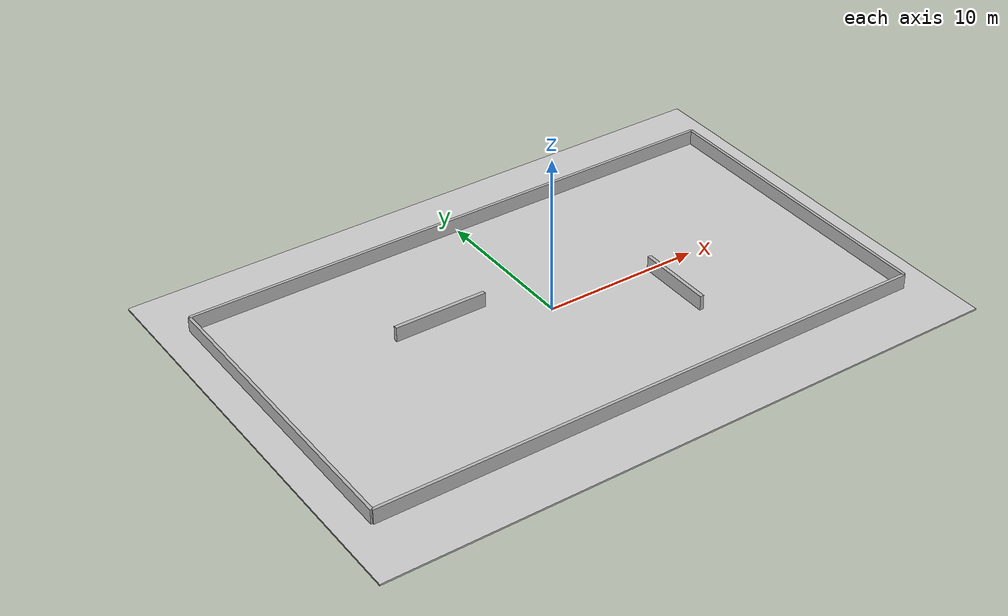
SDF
<?xml version='1.0'?>
<sdf version='1.9'>
  <world name='roboworks_world'>
    <physics name='default_physics' type='ode'>
      <max_step_size>0.001</max_step_size>
      <real_time_factor>1.0</real_time_factor>
      <real_time_update_rate>1000</real_time_update_rate>
    </physics>

    <plugin filename='gz-sim-physics-system' name='gz::sim::systems::Physics'/>
    <plugin filename='gz-sim-user-commands-system' name='gz::sim::systems::UserCommands'/>
    <plugin filename='gz-sim-sensors-system' name='gz::sim::systems::Sensors'/>
    <plugin filename='gz-sim-imu-system' name='gz::sim::systems::Imu'/>
    <plugin filename='gz-sim-scene-broadcaster-system' name='gz::sim::systems::SceneBroadcaster'/>

    <light name='sun' type='directional'>
      <pose>0 0 12 0 0 0</pose>
      <cast_shadows>true</cast_shadows>
      <diffuse>0.9 0.9 0.9 1</diffuse>
      <specular>0.2 0.2 0.2 1</specular>
      <direction>-0.5 0.1 -1</direction>
    </light>

    <model name='ground_plane'>
      <static>true</static>
      <link name='ground_link'>
        <collision name='ground_collision'>
          <geometry><box><size>40 28 0.1</size></box></geometry>
        </collision>
        <visual name='ground_visual'>
          <geometry><box><size>40 28 0.1</size></box></geometry>
          <material>
            <ambient>0.8 0.8 0.8 1</ambient>
            <diffuse>0.8 0.8 0.8 1</diffuse>
          </material>
        </visual>
      </link>
    </model>

    <model name='open_wall_north'>
      <static>true</static>
      <pose>0 10 0.5 0 0 0</pose>
      <link name='link'>
        <collision name='collision'><geometry><box><size>36 0.2 1.0</size></box></geometry></collision>
        <visual name='visual'><geometry><box><size>36 0.2 1.0</size></box></geometry></visual>
      </link>
    </model>

    <model name='open_wall_south'>
      <static>true</static>
      <pose>0 -10 0.5 0 0 0</pose>
      <link name='link'>
        <collision name='collision'><geometry><box><size>36 0.2 1.0</size></box></geometry></collision>
        <visual name='visual'><geometry><box><size>36 0.2 1.0</size></box></geometry></visual>
      </link>
    </model>

    <model name='open_wall_east'>
      <static>true</static>
      <pose>18 0 0.5 0 0 0</pose>
      <link name='link'>
        <collision name='collision'><geometry><box><size>0.2 20 1.0</size></box></geometry></collision>
        <visual name='visual'><geometry><box><size>0.2 20 1.0</size></box></geometry></visual>
      </link>
    </model>

    <model name='open_wall_west'>
      <static>true</static>
      <pose>-18 0 0.5 0 0 0</pose>
      <link name='link'>
        <collision name='collision'><geometry><box><size>0.2 20 1.0</size></box></geometry></collision>
        <visual name='visual'><geometry><box><size>0.2 20 1.0</size></box></geometry></visual>
      </link>
    </model>

    <model name='open_obstacle_west'>
      <static>true</static>
      <pose>-6 2.5 0.5 0 0 0</pose>
      <link name='link'>
        <collision name='collision'><geometry><box><size>6 0.25 1.0</size></box></geometry></collision>
        <visual name='visual'><geometry><box><size>6 0.25 1.0</size></box></geometry></visual>
      </link>
    </model>

    <model name='open_obstacle_east'>
      <static>true</static>
      <pose>7 -2.5 0.5 0 0 1.57079632679</pose>
      <link name='link'>
        <collision name='collision'><geometry><box><size>5 0.25 1.0</size></box></geometry></collision>
        <visual name='visual'><geometry><box><size>5 0.25 1.0</size></box></geometry></visual>
      </link>
    </model>
  </world>
</sdf>
